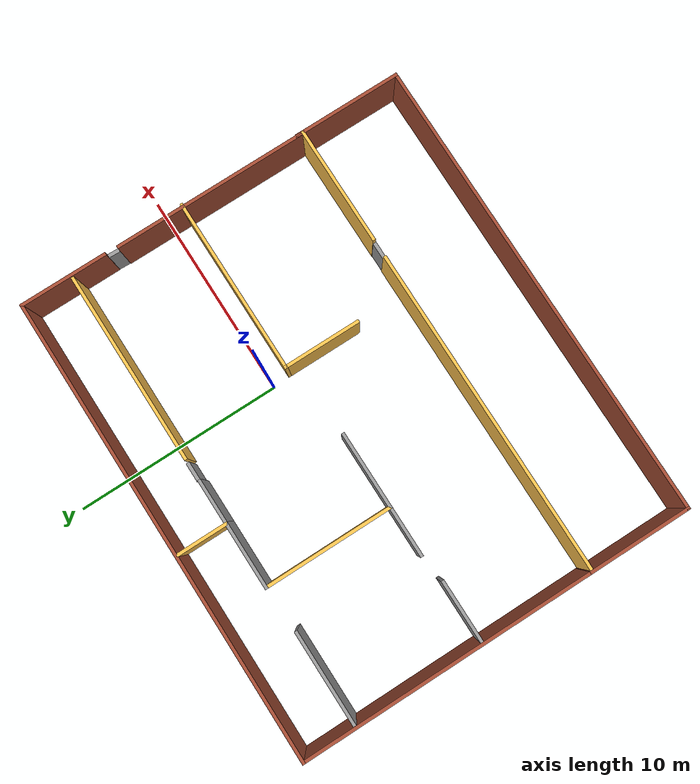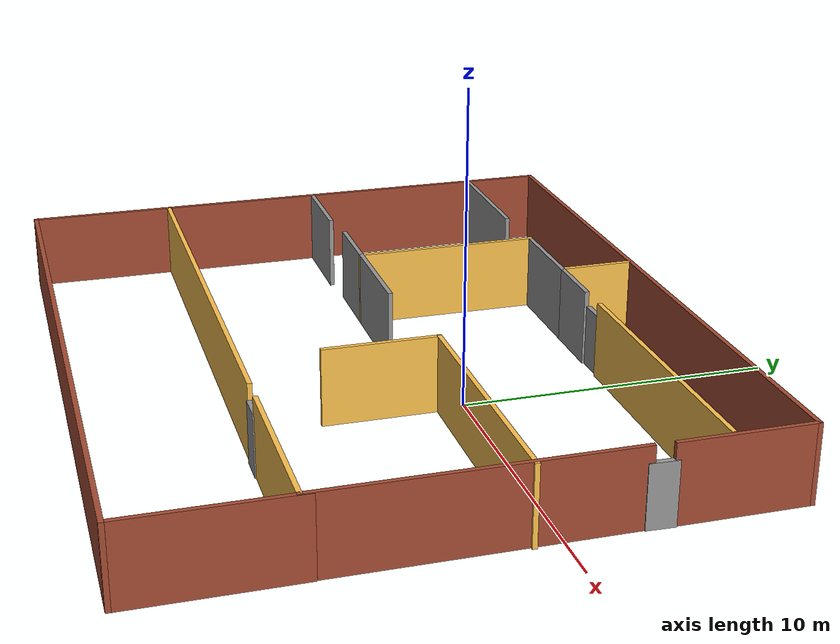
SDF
<?xml version='1.0'?>
<sdf version='1.6'>
  <model name='Building'>
    <pose frame=''>-2.72776 -2.2826 0 0 -0 0</pose>
    <link name='Door_3'>
      <collision name='Door_3_Collision'>
        <geometry>
          <box>
            <size>0.9 0.17 2</size>
          </box>
        </geometry>
        <pose frame=''>0 0 1 0 -0 0</pose>
      </collision>
      <visual name='Door_3_Visual'>
        <pose frame=''>0 0 1 0 -0 0</pose>
        <geometry>
          <box>
            <size>0.9 0.17 2</size>
          </box>
        </geometry>
        <material>
          <script>
            <uri>file://media/materials/scripts/gazebo.material</uri>
            <name>Gazebo/Grey</name>
          </script>
        </material>
      </visual>
      <pose frame=''>5.0986 -4.70368 0 0 -0 0</pose>
    </link>
    <link name='Door_4'>
      <collision name='Door_4_Collision'>
        <geometry>
          <box>
            <size>0.9 0.17 2</size>
          </box>
        </geometry>
        <pose frame=''>0 0 1 0 -0 0</pose>
      </collision>
      <visual name='Door_4_Visual'>
        <pose frame=''>0 0 1 0 -0 0</pose>
        <geometry>
          <box>
            <size>0.9 0.17 2</size>
          </box>
        </geometry>
        <material>
          <script>
            <uri>file://media/materials/scripts/gazebo.material</uri>
            <name>Gazebo/Grey</name>
          </script>
        </material>
      </visual>
      <pose frame=''>11.1592 4.99783 0 0 -0 1.53265</pose>
    </link>
    <link name='Door_5'>
      <collision name='Door_5_Collision'>
        <geometry>
          <box>
            <size>0.9 0.17 2</size>
          </box>
        </geometry>
        <pose frame=''>0 0 1 0 -0 0</pose>
      </collision>
      <visual name='Door_5_Visual'>
        <pose frame=''>0 0 1 0 -0 0</pose>
        <geometry>
          <box>
            <size>0.9 0.17 2</size>
          </box>
        </geometry>
        <material>
          <script>
            <uri>file://media/materials/scripts/gazebo.material</uri>
            <name>Gazebo/Grey</name>
          </script>
        </material>
      </visual>
      <pose frame=''>1.26511 7.10354 0 0 -0 0</pose>
    </link>
    <link name='Wall_12'>
      <collision name='Wall_12_Collision'>
        <geometry>
          <box>
            <size>15.8309 0.15 2.5</size>
          </box>
        </geometry>
        <pose frame=''>0 0 1.25 0 -0 0</pose>
      </collision>
      <visual name='Wall_12_Visual'>
        <pose frame=''>0 0 1.25 0 -0 0</pose>
        <geometry>
          <box>
            <size>15.8309 0.15 2.5</size>
          </box>
        </geometry>
        <material>
          <script>
            <uri>file://media/materials/scripts/gazebo.material</uri>
            <name>Gazebo/Grey</name>
          </script>
          <ambient>1 0.764706 0.305882 1</ambient>
        </material>
        <meta>
          <layer>0</layer>
        </meta>
      </visual>
      <pose frame=''>-3.29355 -4.67266 0 0 -0 0</pose>
    </link>
    <link name='Wall_14'>
      <collision name='Wall_14_Collision'>
        <geometry>
          <box>
            <size>5.75 0.15 2.5</size>
          </box>
        </geometry>
        <pose frame=''>0 0 1.25 0 -0 0</pose>
      </collision>
      <visual name='Wall_14_Visual'>
        <pose frame=''>0 0 1.25 0 -0 0</pose>
        <geometry>
          <box>
            <size>5.75 0.15 2.5</size>
          </box>
        </geometry>
        <material>
          <script>
            <uri>file://media/materials/scripts/gazebo.material</uri>
            <name>Gazebo/Grey</name>
          </script>
          <ambient>1 0.764706 0.305882 1</ambient>
        </material>
        <meta>
          <layer>0</layer>
        </meta>
      </visual>
      <pose frame=''>8.31924 -4.67686 0 0 -0 0</pose>
    </link>
    <link name='Wall_15'>
      <collision name='Wall_15_Collision'>
        <geometry>
          <box>
            <size>9.5 0.15 2.5</size>
          </box>
        </geometry>
        <pose frame=''>0 0 1.25 0 -0 0</pose>
      </collision>
      <visual name='Wall_15_Visual'>
        <pose frame=''>0 0 1.25 0 -0 0</pose>
        <geometry>
          <box>
            <size>9.5 0.15 2.5</size>
          </box>
        </geometry>
        <material>
          <script>
            <uri>file://media/materials/scripts/gazebo.material</uri>
            <name>Gazebo/Bricks</name>
          </script>
          <ambient>1 1 1 1</ambient>
        </material>
        <meta>
          <layer>0</layer>
        </meta>
      </visual>
      <pose frame=''>11.1192 -0.001863 0 0 -0 1.5708</pose>
    </link>
    <link name='Wall_17'>
      <collision name='Wall_17_Collision'>
        <geometry>
          <box>
            <size>4.25 0.15 2.5</size>
          </box>
        </geometry>
        <pose frame=''>0 0 1.25 0 -0 0</pose>
      </collision>
      <visual name='Wall_17_Visual'>
        <pose frame=''>0 0 1.25 0 -0 0</pose>
        <geometry>
          <box>
            <size>4.25 0.15 2.5</size>
          </box>
        </geometry>
        <material>
          <script>
            <uri>file://media/materials/scripts/gazebo.material</uri>
            <name>Gazebo/Bricks</name>
          </script>
          <ambient>1 1 1 1</ambient>
        </material>
        <meta>
          <layer>0</layer>
        </meta>
      </visual>
      <pose frame=''>11.147 7.425 0 0 -0 1.5708</pose>
    </link>
    <link name='Wall_18'>
      <collision name='Wall_18_Collision'>
        <geometry>
          <box>
            <size>22.5 0.15 2.5</size>
          </box>
        </geometry>
        <pose frame=''>0 0 1.25 0 -0 0</pose>
      </collision>
      <visual name='Wall_18_Visual'>
        <pose frame=''>0 0 1.25 0 -0 0</pose>
        <geometry>
          <box>
            <size>22.5 0.15 2.5</size>
          </box>
        </geometry>
        <material>
          <script>
            <uri>file://media/materials/scripts/gazebo.material</uri>
            <name>Gazebo/Bricks</name>
          </script>
          <ambient>1 1 1 1</ambient>
        </material>
        <meta>
          <layer>0</layer>
        </meta>
      </visual>
      <pose frame=''>-0.027974 9.475 0 0 -0 3.14159</pose>
    </link>
    <link name='Wall_19'>
      <collision name='Wall_19_Collision'>
        <geometry>
          <box>
            <size>14.25 0.15 2.5</size>
          </box>
        </geometry>
        <pose frame=''>0 0 1.25 0 -0 0</pose>
      </collision>
      <visual name='Wall_19_Visual'>
        <pose frame=''>0 0 1.25 0 -0 0</pose>
        <geometry>
          <box>
            <size>14.25 0.15 2.5</size>
          </box>
        </geometry>
        <material>
          <script>
            <uri>file://media/materials/scripts/gazebo.material</uri>
            <name>Gazebo/Bricks</name>
          </script>
          <ambient>1 1 1 1</ambient>
        </material>
        <meta>
          <layer>0</layer>
        </meta>
      </visual>
      <pose frame=''>-11.203 2.425 0 0 0 -1.5708</pose>
    </link>
    <link name='Wall_21'>
      <collision name='Wall_21_Collision'>
        <geometry>
          <box>
            <size>9.25 0.15 2.5</size>
          </box>
        </geometry>
        <pose frame=''>0 0 1.25 0 -0 0</pose>
      </collision>
      <visual name='Wall_21_Visual'>
        <pose frame=''>0 0 1.25 0 -0 0</pose>
        <geometry>
          <box>
            <size>9.25 0.15 2.5</size>
          </box>
        </geometry>
        <material>
          <script>
            <uri>file://media/materials/scripts/gazebo.material</uri>
            <name>Gazebo/Grey</name>
          </script>
          <ambient>1 0.764706 0.305882 1</ambient>
        </material>
        <meta>
          <layer>0</layer>
        </meta>
      </visual>
      <pose frame=''>6.4174 7.03693 0 0 -0 3.14159</pose>
    </link>
    <link name='Wall_23'>
      <collision name='Wall_23_Collision'>
        <geometry>
          <box>
            <size>2.25 0.15 2.5</size>
          </box>
        </geometry>
        <pose frame=''>0 0 1.25 0 -0 0</pose>
      </collision>
      <visual name='Wall_23_Visual'>
        <pose frame=''>0 0 1.25 0 -0 0</pose>
        <geometry>
          <box>
            <size>2.25 0.15 2.5</size>
          </box>
        </geometry>
        <material>
          <script>
            <uri>file://media/materials/scripts/gazebo.material</uri>
            <name>Gazebo/Grey</name>
          </script>
          <ambient>1 1 1 1</ambient>
        </material>
        <meta>
          <layer>0</layer>
        </meta>
      </visual>
      <pose frame=''>-0.325021 7.02524 0 0 -0 3.14159</pose>
    </link>
    <link name='Wall_24'>
      <collision name='Wall_24_Collision'>
        <geometry>
          <box>
            <size>2.5 0.15 2.5</size>
          </box>
        </geometry>
        <pose frame=''>0 0 1.25 0 -0 0</pose>
      </collision>
      <visual name='Wall_24_Visual'>
        <pose frame=''>0 0 1.25 0 -0 0</pose>
        <geometry>
          <box>
            <size>2.5 0.15 2.5</size>
          </box>
        </geometry>
        <material>
          <script>
            <uri>file://media/materials/scripts/gazebo.material</uri>
            <name>Gazebo/Grey</name>
          </script>
          <ambient>1 0.764706 0.305882 1</ambient>
        </material>
        <meta>
          <layer>0</layer>
        </meta>
      </visual>
      <pose frame=''>-1.37502 8.20024 0 0 -0 1.5708</pose>
    </link>
    <link name='Wall_26'>
      <collision name='Wall_26_Collision'>
        <geometry>
          <box>
            <size>4.5 0.15 2.5</size>
          </box>
        </geometry>
        <pose frame=''>0 0 1.25 0 -0 0</pose>
      </collision>
      <visual name='Wall_26_Visual'>
        <pose frame=''>0 0 1.25 0 -0 0</pose>
        <geometry>
          <box>
            <size>4.5 0.15 2.5</size>
          </box>
        </geometry>
        <material>
          <script>
            <uri>file://media/materials/scripts/gazebo.material</uri>
            <name>Gazebo/Grey</name>
          </script>
          <ambient>1 1 1 1</ambient>
        </material>
        <meta>
          <layer>0</layer>
        </meta>
      </visual>
      <pose frame=''>-8.87259 6.94433 0 0 -0 0</pose>
    </link>
    <link name='Wall_28'>
      <collision name='Wall_28_Collision'>
        <geometry>
          <box>
            <size>3.25 0.15 2.5</size>
          </box>
        </geometry>
        <pose frame=''>0 0 1.25 0 -0 0</pose>
      </collision>
      <visual name='Wall_28_Visual'>
        <pose frame=''>0 0 1.25 0 -0 0</pose>
        <geometry>
          <box>
            <size>3.25 0.15 2.5</size>
          </box>
        </geometry>
        <material>
          <script>
            <uri>file://media/materials/scripts/gazebo.material</uri>
            <name>Gazebo/Grey</name>
          </script>
          <ambient>1 1 1 1</ambient>
        </material>
        <meta>
          <layer>0</layer>
        </meta>
      </visual>
      <pose frame=''>-2.92502 7.02524 0 0 -0 3.14159</pose>
    </link>
    <link name='Wall_29'>
      <collision name='Wall_29_Collision'>
        <geometry>
          <box>
            <size>6.25 0.15 2.5</size>
          </box>
        </geometry>
        <pose frame=''>0 0 1.25 0 -0 0</pose>
      </collision>
      <visual name='Wall_29_Visual'>
        <pose frame=''>0 0 1.25 0 -0 0</pose>
        <geometry>
          <box>
            <size>6.25 0.15 2.5</size>
          </box>
        </geometry>
        <material>
          <script>
            <uri>file://media/materials/scripts/gazebo.material</uri>
            <name>Gazebo/Grey</name>
          </script>
          <ambient>1 0.764706 0.305882 1</ambient>
        </material>
        <meta>
          <layer>0</layer>
        </meta>
      </visual>
      <pose frame=''>-4.47502 3.97524 0 0 0 -1.5708</pose>
    </link>
    <link name='Wall_30'>
      <collision name='Wall_30_Collision'>
        <geometry>
          <box>
            <size>3.75 0.15 2.5</size>
          </box>
        </geometry>
        <pose frame=''>0 0 1.25 0 -0 0</pose>
      </collision>
      <visual name='Wall_30_Visual'>
        <pose frame=''>0 0 1.25 0 -0 0</pose>
        <geometry>
          <box>
            <size>3.75 0.15 2.5</size>
          </box>
        </geometry>
        <material>
          <script>
            <uri>file://media/materials/scripts/gazebo.material</uri>
            <name>Gazebo/Grey</name>
          </script>
          <ambient>1 1 1 1</ambient>
        </material>
        <meta>
          <layer>0</layer>
        </meta>
      </visual>
      <pose frame=''>-2.67502 0.925244 0 0 -0 0</pose>
    </link>
    <link name='Wall_32'>
      <collision name='Wall_32_Collision'>
        <geometry>
          <box>
            <size>8.5 0.15 2.5</size>
          </box>
        </geometry>
        <pose frame=''>0 0 1.25 0 -0 0</pose>
      </collision>
      <visual name='Wall_32_Visual'>
        <pose frame=''>0 0 1.25 0 -0 0</pose>
        <geometry>
          <box>
            <size>8.5 0.15 2.5</size>
          </box>
        </geometry>
        <material>
          <script>
            <uri>file://media/materials/scripts/gazebo.material</uri>
            <name>Gazebo/Grey</name>
          </script>
          <ambient>1 0.764706 0.305882 1</ambient>
        </material>
        <meta>
          <layer>0</layer>
        </meta>
      </visual>
      <pose frame=''>7.02797 1.44237 0 0 -0 3.14159</pose>
    </link>
    <link name='Wall_33'>
      <collision name='Wall_33_Collision'>
        <geometry>
          <box>
            <size>3.75 0.15 2.5</size>
          </box>
        </geometry>
        <pose frame=''>0 0 1.25 0 -0 0</pose>
      </collision>
      <visual name='Wall_33_Visual'>
        <pose frame=''>0 0 1.25 0 -0 0</pose>
        <geometry>
          <box>
            <size>3.75 0.15 2.5</size>
          </box>
        </geometry>
        <material>
          <script>
            <uri>file://media/materials/scripts/gazebo.material</uri>
            <name>Gazebo/Grey</name>
          </script>
          <ambient>1 0.764706 0.305882 1</ambient>
        </material>
        <meta>
          <layer>0</layer>
        </meta>
      </visual>
      <pose frame=''>2.85297 -0.357625 0 0 0 -1.5708</pose>
    </link>
    <link name='Wall_35'>
      <collision name='Wall_35_Collision'>
        <geometry>
          <box>
            <size>2.5 0.15 2.5</size>
          </box>
        </geometry>
        <pose frame=''>0 0 1.25 0 -0 0</pose>
      </collision>
      <visual name='Wall_35_Visual'>
        <pose frame=''>0 0 1.25 0 -0 0</pose>
        <geometry>
          <box>
            <size>2.5 0.15 2.5</size>
          </box>
        </geometry>
        <material>
          <script>
            <uri>file://media/materials/scripts/gazebo.material</uri>
            <name>Gazebo/Grey</name>
          </script>
          <ambient>1 1 1 1</ambient>
        </material>
        <meta>
          <layer>0</layer>
        </meta>
      </visual>
      <pose frame=''>-5.65002 0.925244 0 0 -0 3.14159</pose>
    </link>
    <link name='Wall_37'>
      <collision name='Wall_37_Collision'>
        <geometry>
          <box>
            <size>3 0.15 2.5</size>
          </box>
        </geometry>
        <pose frame=''>0 0 1.25 0 -0 0</pose>
      </collision>
      <visual name='Wall_37_Visual'>
        <pose frame=''>0 0 1.25 0 -0 0</pose>
        <geometry>
          <box>
            <size>3 0.15 2.5</size>
          </box>
        </geometry>
        <material>
          <script>
            <uri>file://media/materials/scripts/gazebo.material</uri>
            <name>Gazebo/Grey</name>
          </script>
          <ambient>1 1 1 1</ambient>
        </material>
        <meta>
          <layer>0</layer>
        </meta>
      </visual>
      <pose frame=''>-9.66305 0.75463 0 0 -0 0</pose>
    </link>
    <link name='Wall_39'>
      <collision name='Wall_39_Collision'>
        <geometry>
          <box>
            <size>5 0.15 2.5</size>
          </box>
        </geometry>
        <pose frame=''>0 0 1.25 0 -0 0</pose>
      </collision>
      <visual name='Wall_39_Visual'>
        <pose frame=''>0 0 1.25 0 -0 0</pose>
        <geometry>
          <box>
            <size>5 0.15 2.5</size>
          </box>
        </geometry>
        <material>
          <script>
            <uri>file://media/materials/scripts/gazebo.material</uri>
            <name>Gazebo/Bricks</name>
          </script>
          <ambient>1 1 1 1</ambient>
        </material>
        <meta>
          <layer>0</layer>
        </meta>
      </visual>
      <pose frame=''>-11.203 -7.05 0 0 0 -1.5708</pose>
    </link>
    <link name='Wall_40'>
      <collision name='Wall_40_Collision'>
        <geometry>
          <box>
            <size>22.5 0.15 2.5</size>
          </box>
        </geometry>
        <pose frame=''>0 0 1.25 0 -0 0</pose>
      </collision>
      <visual name='Wall_40_Visual'>
        <pose frame=''>0 0 1.25 0 -0 0</pose>
        <geometry>
          <box>
            <size>22.5 0.15 2.5</size>
          </box>
        </geometry>
        <material>
          <script>
            <uri>file://media/materials/scripts/gazebo.material</uri>
            <name>Gazebo/Bricks</name>
          </script>
          <ambient>1 1 1 1</ambient>
        </material>
        <meta>
          <layer>0</layer>
        </meta>
      </visual>
      <pose frame=''>-0.027974 -9.475 0 0 -0 0</pose>
    </link>
    <link name='Wall_41'>
      <collision name='Wall_41_Collision'>
        <geometry>
          <box>
            <size>5.25 0.15 2.5</size>
          </box>
        </geometry>
        <pose frame=''>0 0 1.25 0 -0 0</pose>
      </collision>
      <visual name='Wall_41_Visual'>
        <pose frame=''>0 0 1.25 0 -0 0</pose>
        <geometry>
          <box>
            <size>5.25 0.15 2.5</size>
          </box>
        </geometry>
        <material>
          <script>
            <uri>file://media/materials/scripts/gazebo.material</uri>
            <name>Gazebo/Bricks</name>
          </script>
          <ambient>1 1 1 1</ambient>
        </material>
        <meta>
          <layer>0</layer>
        </meta>
      </visual>
      <pose frame=''>11.147 -6.925 0 0 -0 1.5708</pose>
    </link>
    <static>1</static>
  </model>
</sdf>
